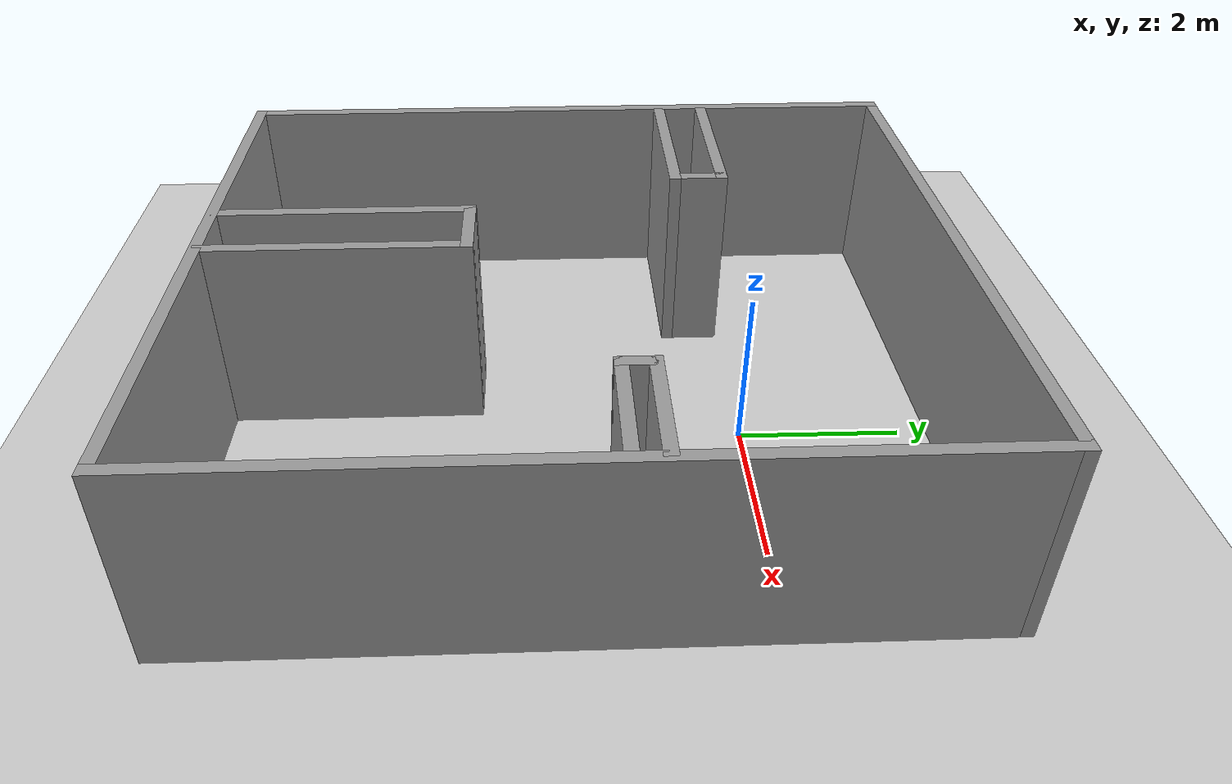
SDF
<sdf version="1.6">
 <world name="default">
  <light name="sun" type="directional">
   <pose>0 0 10 0 -0 0</pose>
   <diffuse>0.8 0.8 0.8 1</diffuse>
   <specular>0.2 0.2 0.2 1</specular>
   <attenuation>
    <range>1000</range>
    <constant>0.9</constant>
    <linear>0.01</linear>
    <quadratic>0.001</quadratic>
   </attenuation>
   <direction>-0.5 0.1 -0.9</direction>
  </light>
  <model name="ground_plane">
   <static>1</static>
   <link name="link">
    <collision name="collision">
     <geometry><plane><normal>0 0 1</normal><size>100 100</size></plane></geometry>
     <surface>
      <contact><collide_bitmask>65535</collide_bitmask></contact>
      <friction><ode><mu>100</mu><mu2>50</mu2></ode></friction>
     </surface>
    </collision>
    <visual name="visual">
     <cast_shadows>0</cast_shadows>
     <geometry><plane><normal>0 0 1</normal><size>100 100</size></plane></geometry>
     <material>
      <script><uri>file://media/materials/scripts/gazebo.material</uri><name>Gazebo/Grey</name></script>
     </material>
    </visual>
   </link>
  </model>
  <gravity>0 0 -9.8</gravity>
  <magnetic_field>6e-06 2.3e-05 -4.2e-05</magnetic_field>
  <atmosphere type="adiabatic"/>
  <physics name="default_physics" default="0" type="ode">
   <max_step_size>0.001</max_step_size>
   <real_time_factor>1</real_time_factor>
   <real_time_update_rate>1000</real_time_update_rate>
  </physics>
  <scene><ambient>0.4 0.4 0.4 1</ambient><background>0.7 0.7 0.7 1</background><shadows>1</shadows></scene>
  <spherical_coordinates>
   <surface_model>EARTH_WGS84</surface_model>
   <latitude_deg>0</latitude_deg>
   <longitude_deg>0</longitude_deg>
   <elevation>0</elevation>
   <heading_deg>0</heading_deg>
  </spherical_coordinates>
  <model name="b2">
   <pose>-0.651473 -1.99706 0 0 -0 0</pose>
   <link name="Wall_11">
    <collision name="Wall_11_Collision">
     <geometry><box><size>7.75 0.15 2.5</size></box></geometry>
     <pose>0 0 1.25 0 -0 0</pose>
    </collision>
    <visual name="Wall_11_Visual">
     <pose>0 0 1.25 0 -0 0</pose>
     <geometry><box><size>7.75 0.15 2.5</size></box></geometry>
     <material>
      <script><uri>file://media/materials/scripts/gazebo.material</uri><name>Gazebo/Grey</name></script>
      <ambient>1 1 1 1</ambient>
     </material>
     <meta><layer>0</layer></meta>
    </visual>
    <pose>0 4.425 0 0 -0 0</pose>
   </link>
   <link name="Wall_13">
    <collision name="Wall_13_Collision">
     <geometry><box><size>2.25 0.15 2.5</size></box></geometry>
     <pose>0 0 1.25 0 -0 0</pose>
    </collision>
    <visual name="Wall_13_Visual">
     <pose>0 0 1.25 0 -0 0</pose>
     <geometry><box><size>2.25 0.15 2.5</size></box></geometry>
     <material>
      <script><uri>file://media/materials/scripts/gazebo.material</uri><name>Gazebo/Grey</name></script>
      <ambient>1 1 1 1</ambient>
     </material>
     <meta><layer>0</layer></meta>
    </visual>
    <pose>-2.63908 1.91197 0 0 -0 0</pose>
   </link>
   <link name="Wall_14">
    <collision name="Wall_14_Collision">
     <geometry><box><size>0.75 0.15 2.5</size></box></geometry>
     <pose>0 0 1.25 0 -0 0</pose>
    </collision>
    <visual name="Wall_14_Visual">
     <pose>0 0 1.25 0 -0 0</pose>
     <geometry><box><size>0.75 0.15 2.5</size></box></geometry>
     <material>
      <script><uri>file://media/materials/scripts/gazebo.material</uri><name>Gazebo/Grey</name></script>
      <ambient>1 1 1 1</ambient>
     </material>
     <meta><layer>0</layer></meta>
    </visual>
    <pose>-1.58908 1.61197 0 0 0 -1.5708</pose>
   </link>
   <link name="Wall_15">
    <collision name="Wall_15_Collision">
     <geometry><box><size>2.25 0.15 2.5</size></box></geometry>
     <pose>0 0 1.25 0 -0 0</pose>
    </collision>
    <visual name="Wall_15_Visual">
     <pose>0 0 1.25 0 -0 0</pose>
     <geometry><box><size>2.25 0.15 2.5</size></box></geometry>
     <material>
      <script><uri>file://media/materials/scripts/gazebo.material</uri><name>Gazebo/Grey</name></script>
      <ambient>1 1 1 1</ambient>
     </material>
     <meta><layer>0</layer></meta>
    </visual>
    <pose>-2.63908 1.31197 0 0 -0 3.14159</pose>
   </link>
   <link name="Wall_21">
    <collision name="Wall_21_Collision">
     <geometry><box><size>3.25 0.15 2.5</size></box></geometry>
     <pose>0 0 1.25 0 -0 0</pose>
    </collision>
    <visual name="Wall_21_Visual">
     <pose>0 0 1.25 0 -0 0</pose>
     <geometry><box><size>3.25 0.15 2.5</size></box></geometry>
     <material>
      <script><uri>file://media/materials/scripts/gazebo.material</uri><name>Gazebo/Grey</name></script>
      <ambient>1 1 1 1</ambient>
     </material>
     <meta><layer>0</layer></meta>
    </visual>
    <pose>-0.815476 -2.84206 0 0 -0 1.5708</pose>
   </link>
   <link name="Wall_22">
    <collision name="Wall_22_Collision">
     <geometry><box><size>1 0.15 2.5</size></box></geometry>
     <pose>0 0 1.25 0 -0 0</pose>
    </collision>
    <visual name="Wall_22_Visual">
     <pose>0 0 1.25 0 -0 0</pose>
     <geometry><box><size>1 0.15 2.5</size></box></geometry>
     <material>
      <script><uri>file://media/materials/scripts/gazebo.material</uri><name>Gazebo/Grey</name></script>
      <ambient>1 1 1 1</ambient>
     </material>
     <meta><layer>0</layer></meta>
    </visual>
    <pose>-0.390476 -1.29206 0 0 -0 0</pose>
   </link>
   <link name="Wall_23">
    <collision name="Wall_23_Collision">
     <geometry><box><size>3.25 0.15 2.5</size></box></geometry>
     <pose>0 0 1.25 0 -0 0</pose>
    </collision>
    <visual name="Wall_23_Visual">
     <pose>0 0 1.25 0 -0 0</pose>
     <geometry><box><size>3.25 0.15 2.5</size></box></geometry>
     <material>
      <script><uri>file://media/materials/scripts/gazebo.material</uri><name>Gazebo/Grey</name></script>
      <ambient>1 1 1 1</ambient>
     </material>
     <meta><layer>0</layer></meta>
    </visual>
    <pose>0.034524 -2.84206 0 0 0 -1.5708</pose>
   </link>
   <link name="Wall_25">
    <collision name="Wall_25_Collision">
     <geometry><box><size>1.5 0.15 2.5</size></box></geometry>
     <pose>0 0 1.25 0 -0 0</pose>
    </collision>
    <visual name="Wall_25_Visual">
     <pose>0 0 1.25 0 -0 0</pose>
     <geometry><box><size>1.5 0.15 2.5</size></box></geometry>
     <material>
      <script><uri>file://media/materials/scripts/gazebo.material</uri><name>Gazebo/Grey</name></script>
      <ambient>1 1 1 1</ambient>
     </material>
     <meta><layer>0</layer></meta>
    </visual>
    <pose>3.05816 0.688579 0 0 -0 3.14159</pose>
   </link>
   <link name="Wall_29">
    <collision name="Wall_29_Collision">
     <geometry><box><size>0.5 0.15 2.5</size></box></geometry>
     <pose>0 0 1.25 0 -0 0</pose>
    </collision>
    <visual name="Wall_29_Visual">
     <pose>0 0 1.25 0 -0 0</pose>
     <geometry><box><size>0.5 0.15 2.5</size></box></geometry>
     <material>
      <script><uri>file://media/materials/scripts/gazebo.material</uri><name>Gazebo/Grey</name></script>
      <ambient>1 1 1 1</ambient>
     </material>
     <meta><layer>0</layer></meta>
    </visual>
    <pose>2.38316 0.513579 0 0 0 -1.5708</pose>
   </link>
   <link name="Wall_3">
    <collision name="Wall_3_Collision">
     <geometry><box><size>7.75 0.15 2.5</size></box></geometry>
     <pose>0 0 1.25 0 -0 0</pose>
    </collision>
    <visual name="Wall_3_Visual">
     <pose>0 0 1.25 0 -0 0</pose>
     <geometry><box><size>7.75 0.15 2.5</size></box></geometry>
     <material>
      <script><uri>file://media/materials/scripts/gazebo.material</uri><name>Gazebo/Grey</name></script>
      <ambient>1 1 1 1</ambient>
     </material>
     <meta><layer>0</layer></meta>
    </visual>
    <pose>0 -4.425 0 0 -0 0</pose>
   </link>
   <link name="Wall_30">
    <collision name="Wall_30_Collision">
     <geometry><box><size>1.5 0.15 2.5</size></box></geometry>
     <pose>0 0 1.25 0 -0 0</pose>
    </collision>
    <visual name="Wall_30_Visual">
     <pose>0 0 1.25 0 -0 0</pose>
     <geometry><box><size>1.5 0.15 2.5</size></box></geometry>
     <material>
      <script><uri>file://media/materials/scripts/gazebo.material</uri><name>Gazebo/Grey</name></script>
      <ambient>1 1 1 1</ambient>
     </material>
     <meta><layer>0</layer></meta>
    </visual>
    <pose>3.05816 0.338579 0 0 -0 0</pose>
   </link>
   <link name="Wall_7">
    <collision name="Wall_7_Collision">
     <geometry><box><size>9 0.15 2.5</size></box></geometry>
     <pose>0 0 1.25 0 -0 0</pose>
    </collision>
    <visual name="Wall_7_Visual">
     <pose>0 0 1.25 0 -0 0</pose>
     <geometry><box><size>9 0.15 2.5</size></box></geometry>
     <material>
      <script><uri>file://media/materials/scripts/gazebo.material</uri><name>Gazebo/Grey</name></script>
      <ambient>1 1 1 1</ambient>
     </material>
     <meta><layer>0</layer></meta>
    </visual>
    <pose>3.8 0 0 0 -0 1.5708</pose>
   </link>
   <link name="Wall_9">
    <collision name="Wall_9_Collision">
     <geometry><box><size>9 0.15 2.5</size></box></geometry>
     <pose>0 0 1.25 0 -0 0</pose>
    </collision>
    <visual name="Wall_9_Visual">
     <pose>0 0 1.25 0 -0 0</pose>
     <geometry><box><size>9 0.15 2.5</size></box></geometry>
     <material>
      <script><uri>file://media/materials/scripts/gazebo.material</uri><name>Gazebo/Grey</name></script>
      <ambient>1 1 1 1</ambient>
     </material>
     <meta><layer>0</layer></meta>
    </visual>
    <pose>-3.8 0 0 0 -0 1.5708</pose>
   </link>
   <static>1</static>
  </model>
 </world>
</sdf>
